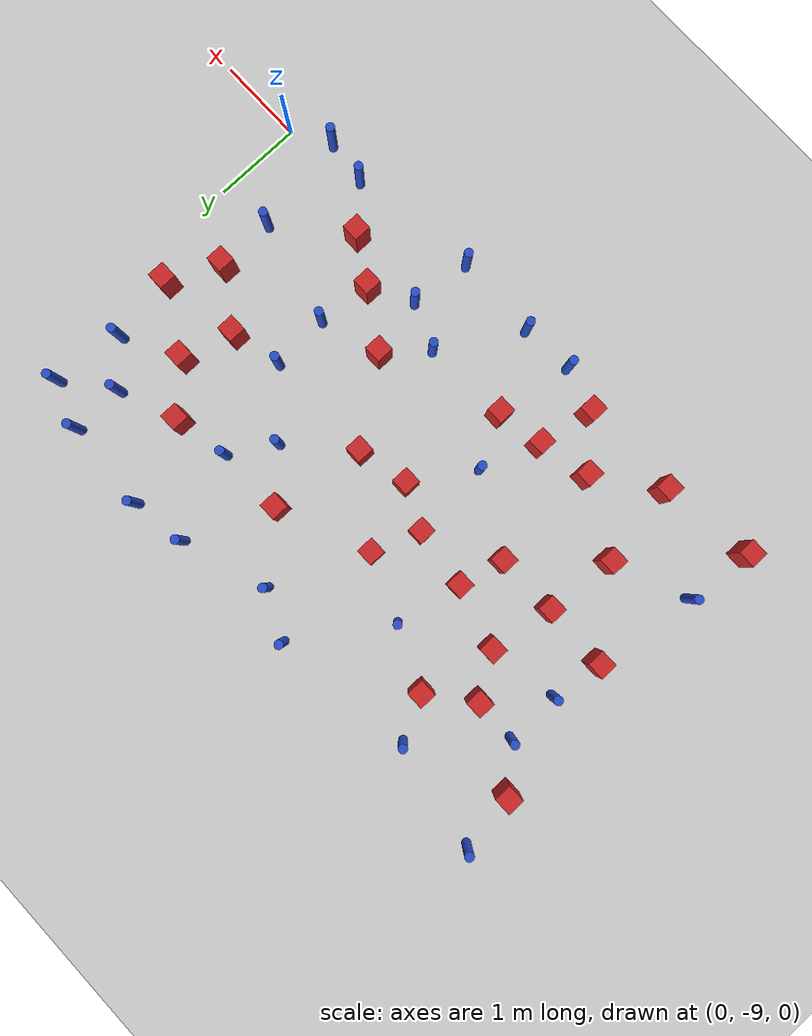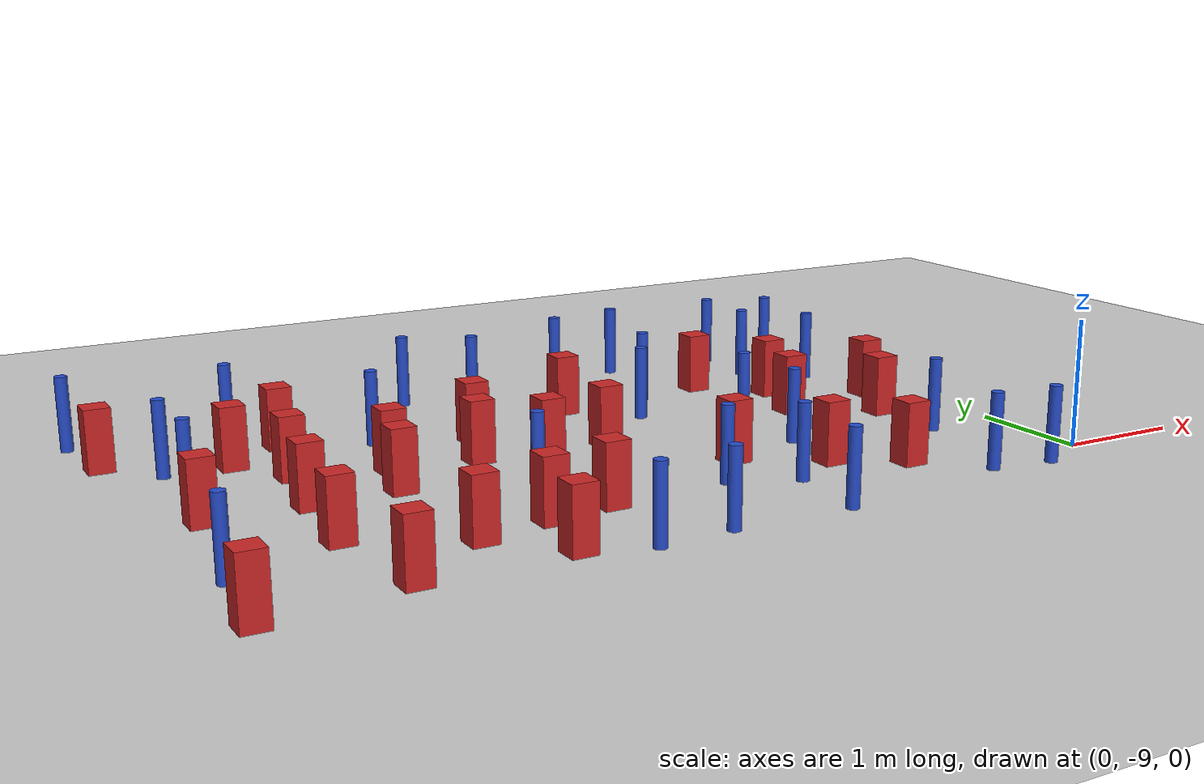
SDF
<sdf version="1.6">
 <world name="default">
  <model name="ground_plane">
   <static>1</static>
   <link name="link">
    <collision name="collision">
     <geometry><plane><normal>0 0 1</normal><size>100 100</size></plane></geometry>
     <surface><friction><ode><mu>100</mu><mu2>50</mu2></ode></friction></surface>
    </collision>
    <visual name="visual">
     <cast_shadows>0</cast_shadows>
     <geometry><plane><normal>0 0 1</normal><size>100 100</size></plane></geometry>
     <material>
      <ambient>1.0 1.0 1.0 1.0</ambient>
      <diffuse>0.8 0.8 0.8 1.0</diffuse>
      <specular>0.01 0.01 0.01 1.000000</specular>
     </material>
    </visual>
   </link>
  </model>
  <model name="pole_obstacle3">
   <static>true</static>
   <pose>-0.965626701555 -9.16200165954 2.88873142074e-08 -9.90536690773e-09 4.60219948967e-07 -1.20965994976e-07</pose>
   <link name="link">
    <pose>0 0 0.3 0 -0 0</pose>
    <inertial>
     <mass>1</mass>
     <inertia><ixx>0.145833</ixx><ixy>0</ixy><ixz>0</ixz><iyy>0.145833</iyy><iyz>0</iyz><izz>0.125</izz></inertia>
    </inertial>
    <collision name="collision">
     <geometry><cylinder><radius>0.05</radius><length>.6</length></cylinder></geometry>
    </collision>
    <visual name="visual">
     <geometry><cylinder><radius>0.05</radius><length>.6</length></cylinder></geometry>
     <material>
      <script><name>Gazebo/Blue</name><uri>file://media/materials/scripts/gazebo.material</uri></script>
     </material>
    </visual>
   </link>
  </model>
  <model name="pole_obstacle4">
   <static>true</static>
   <pose>-0.408652184443 -5.30799203485 2.88873142074e-08 -9.90536689683e-09 4.60219948993e-07 -1.20965994957e-07</pose>
   <link name="link">
    <pose>0 0 0.3 0 -0 0</pose>
    <inertial>
     <mass>1</mass>
     <inertia><ixx>0.145833</ixx><ixy>0</ixy><ixz>0</ixz><iyy>0.145833</iyy><iyz>0</iyz><izz>0.125</izz></inertia>
    </inertial>
    <collision name="collision">
     <geometry><cylinder><radius>0.05</radius><length>.6</length></cylinder></geometry>
    </collision>
    <visual name="visual">
     <geometry><cylinder><radius>0.05</radius><length>.6</length></cylinder></geometry>
     <material>
      <script><name>Gazebo/Blue</name><uri>file://media/materials/scripts/gazebo.material</uri></script>
     </material>
    </visual>
   </link>
  </model>
  <model name="pole_obstacle5">
   <static>true</static>
   <pose>-2.88354378176 -8.45582240815 2.88873142074e-08 -9.90536692318e-09 4.6021994893e-07 -1.20965994988e-07</pose>
   <link name="link">
    <pose>0 0 0.3 0 -0 0</pose>
    <inertial>
     <mass>1</mass>
     <inertia><ixx>0.145833</ixx><ixy>0</ixy><ixz>0</ixz><iyy>0.145833</iyy><iyz>0</iyz><izz>0.125</izz></inertia>
    </inertial>
    <collision name="collision">
     <geometry><cylinder><radius>0.05</radius><length>.6</length></cylinder></geometry>
    </collision>
    <visual name="visual">
     <geometry><cylinder><radius>0.05</radius><length>.6</length></cylinder></geometry>
     <material>
      <script><name>Gazebo/Blue</name><uri>file://media/materials/scripts/gazebo.material</uri></script>
     </material>
    </visual>
   </link>
  </model>
  <model name="pole_obstacle18">
   <static>true</static>
   <pose>-2.51192402279 -6.57364665541 2.88873142074e-08 -9.90536689859e-09 4.60219948989e-07 -1.20965994961e-07</pose>
   <link name="link">
    <pose>0 0 0.3 0 -0 0</pose>
    <inertial>
     <mass>1</mass>
     <inertia><ixx>0.145833</ixx><ixy>0</ixy><ixz>0</ixz><iyy>0.145833</iyy><iyz>0</iyz><izz>0.125</izz></inertia>
    </inertial>
    <collision name="collision">
     <geometry><cylinder><radius>0.05</radius><length>.6</length></cylinder></geometry>
    </collision>
    <visual name="visual">
     <geometry><cylinder><radius>0.05</radius><length>.6</length></cylinder></geometry>
     <material>
      <script><name>Gazebo/Blue</name><uri>file://media/materials/scripts/gazebo.material</uri></script>
     </material>
    </visual>
   </link>
  </model>
  <model name="square_post_obstacle19">
   <static>true</static>
   <pose>-5.41778534808 -5.92555688387 8.22691968438e-08 7.2212513382e-06 -7.54495500217e-07 2.29674213826e-05</pose>
   <link name="link">
    <pose>0 0 0.25 0 -0 0</pose>
    <inertial>
     <mass>100</mass>
     <inertia>
      <ixx>0.166667</ixx>
      <ixy>0</ixy>
      <ixz>0</ixz>
      <iyy>0.166667</iyy>
      <iyz>0</iyz>
      <izz>0.166667</izz>
     </inertia>
    </inertial>
    <collision name="collision"><geometry><box><size>.2 .2 .5</size></box></geometry></collision>
    <visual name="visual">
     <geometry><box><size>.2 .2 .5</size></box></geometry>
     <material>
      <script><name>Gazebo/Red</name><uri>file://media/materials/scripts/gazebo.material</uri></script>
     </material>
    </visual>
   </link>
  </model>
  <model name="square_post_obstacle22">
   <static>true</static>
   <pose>-4.96510467496 -8.71704605584 8.22691968438e-08 7.22125133819e-06 -7.54495500217e-07 2.29674213826e-05</pose>
   <link name="link">
    <pose>0 0 0.25 0 -0 0</pose>
    <inertial>
     <mass>100</mass>
     <inertia>
      <ixx>0.166667</ixx>
      <ixy>0</ixy>
      <ixz>0</ixz>
      <iyy>0.166667</iyy>
      <iyz>0</iyz>
      <izz>0.166667</izz>
     </inertia>
    </inertial>
    <collision name="collision"><geometry><box><size>.2 .2 .5</size></box></geometry></collision>
    <visual name="visual">
     <geometry><box><size>.2 .2 .5</size></box></geometry>
     <material>
      <script><name>Gazebo/Red</name><uri>file://media/materials/scripts/gazebo.material</uri></script>
     </material>
    </visual>
   </link>
  </model>
  <model name="pole_obstacle33">
   <static>true</static>
   <pose>-2.21516781809 -6.08439157944 2.88873142074e-08 -9.90536689859e-09 4.60219948989e-07 -1.20965994961e-07</pose>
   <link name="link">
    <pose>0 0 0.3 0 -0 0</pose>
    <inertial>
     <mass>1</mass>
     <inertia><ixx>0.145833</ixx><ixy>0</ixy><ixz>0</ixz><iyy>0.145833</iyy><iyz>0</iyz><izz>0.125</izz></inertia>
    </inertial>
    <collision name="collision">
     <geometry><cylinder><radius>0.05</radius><length>.6</length></cylinder></geometry>
    </collision>
    <visual name="visual">
     <geometry><cylinder><radius>0.05</radius><length>.6</length></cylinder></geometry>
     <material>
      <script><name>Gazebo/Blue</name><uri>file://media/materials/scripts/gazebo.material</uri></script>
     </material>
    </visual>
   </link>
  </model>
  <model name="pole_obstacle40">
   <static>true</static>
   <pose>-0.937470885243 -5.71173665974 2.88873142074e-08 -9.90536689661e-09 4.60219948993e-07 -1.20965994957e-07</pose>
   <link name="link">
    <pose>0 0 0.3 0 -0 0</pose>
    <inertial>
     <mass>1</mass>
     <inertia><ixx>0.145833</ixx><ixy>0</ixy><ixz>0</ixz><iyy>0.145833</iyy><iyz>0</iyz><izz>0.125</izz></inertia>
    </inertial>
    <collision name="collision">
     <geometry><cylinder><radius>0.05</radius><length>.6</length></cylinder></geometry>
    </collision>
    <visual name="visual">
     <geometry><cylinder><radius>0.05</radius><length>.6</length></cylinder></geometry>
     <material>
      <script><name>Gazebo/Blue</name><uri>file://media/materials/scripts/gazebo.material</uri></script>
     </material>
    </visual>
   </link>
  </model>
  <model name="pole_obstacle41">
   <static>true</static>
   <pose>-6.62295553632 -8.6149199981 2.88873142074e-08 -9.9053668967e-09 4.60219948993e-07 -1.20965994957e-07</pose>
   <link name="link">
    <pose>0 0 0.3 0 -0 0</pose>
    <inertial>
     <mass>1</mass>
     <inertia><ixx>0.145833</ixx><ixy>0</ixy><ixz>0</ixz><iyy>0.145833</iyy><iyz>0</iyz><izz>0.125</izz></inertia>
    </inertial>
    <collision name="collision">
     <geometry><cylinder><radius>0.05</radius><length>.6</length></cylinder></geometry>
    </collision>
    <visual name="visual">
     <geometry><cylinder><radius>0.05</radius><length>.6</length></cylinder></geometry>
     <material>
      <script><name>Gazebo/Blue</name><uri>file://media/materials/scripts/gazebo.material</uri></script>
     </material>
    </visual>
   </link>
  </model>
  <model name="square_post_obstacle34">
   <static>true</static>
   <pose>-5.59237641582 -6.75938222875 8.22691968438e-08 7.2212513382e-06 -7.54495500217e-07 2.29674213826e-05</pose>
   <link name="link">
    <pose>0 0 0.25 0 -0 0</pose>
    <inertial>
     <mass>100</mass>
     <inertia>
      <ixx>0.166667</ixx>
      <ixy>0</ixy>
      <ixz>0</ixz>
      <iyy>0.166667</iyy>
      <iyz>0</iyz>
      <izz>0.166667</izz>
     </inertia>
    </inertial>
    <collision name="collision"><geometry><box><size>.2 .2 .5</size></box></geometry></collision>
    <visual name="visual">
     <geometry><box><size>.2 .2 .5</size></box></geometry>
     <material>
      <script><name>Gazebo/Red</name><uri>file://media/materials/scripts/gazebo.material</uri></script>
     </material>
    </visual>
   </link>
  </model>
  <model name="square_post_obstacle44">
   <static>true</static>
   <pose>-1.14608774891 -6.44288942106 8.22691968438e-08 7.2212513382e-06 -7.54495500217e-07 2.29674213826e-05</pose>
   <link name="link">
    <pose>0 0 0.25 0 -0 0</pose>
    <inertial>
     <mass>100</mass>
     <inertia>
      <ixx>0.166667</ixx>
      <ixy>0</ixy>
      <ixz>0</ixz>
      <iyy>0.166667</iyy>
      <iyz>0</iyz>
      <izz>0.166667</izz>
     </inertia>
    </inertial>
    <collision name="collision"><geometry><box><size>.2 .2 .5</size></box></geometry></collision>
    <visual name="visual">
     <geometry><box><size>.2 .2 .5</size></box></geometry>
     <material>
      <script><name>Gazebo/Red</name><uri>file://media/materials/scripts/gazebo.material</uri></script>
     </material>
    </visual>
   </link>
  </model>
  <model name="pole_obstacle68">
   <static>true</static>
   <pose>-0.451042957827 -9.23060543579 2.88873142074e-08 -9.90536690305e-09 4.60219948978e-07 -1.20965994968e-07</pose>
   <link name="link">
    <pose>0 0 0.3 0 -0 0</pose>
    <inertial>
     <mass>1</mass>
     <inertia><ixx>0.145833</ixx><ixy>0</ixy><ixz>0</ixz><iyy>0.145833</iyy><iyz>0</iyz><izz>0.125</izz></inertia>
    </inertial>
    <collision name="collision">
     <geometry><cylinder><radius>0.05</radius><length>.6</length></cylinder></geometry>
    </collision>
    <visual name="visual">
     <geometry><cylinder><radius>0.05</radius><length>.6</length></cylinder></geometry>
     <material>
      <script><name>Gazebo/Blue</name><uri>file://media/materials/scripts/gazebo.material</uri></script>
     </material>
    </visual>
   </link>
  </model>
  <model name="square_post_obstacle57">
   <static>true</static>
   <pose>-1.32304335306 -7.02066667712 8.22691968438e-08 7.2212513382e-06 -7.54495500217e-07 2.29674213826e-05</pose>
   <link name="link">
    <pose>0 0 0.25 0 -0 0</pose>
    <inertial>
     <mass>100</mass>
     <inertia>
      <ixx>0.166667</ixx>
      <ixy>0</ixy>
      <ixz>0</ixz>
      <iyy>0.166667</iyy>
      <iyz>0</iyz>
      <izz>0.166667</izz>
     </inertia>
    </inertial>
    <collision name="collision"><geometry><box><size>.2 .2 .5</size></box></geometry></collision>
    <visual name="visual">
     <geometry><box><size>.2 .2 .5</size></box></geometry>
     <material>
      <script><name>Gazebo/Red</name><uri>file://media/materials/scripts/gazebo.material</uri></script>
     </material>
    </visual>
   </link>
  </model>
  <model name="square_post_obstacle61">
   <static>true</static>
   <pose>-3.00025700721 -6.10662085031 8.22691968438e-08 7.2212513382e-06 -7.54495500217e-07 2.29674213826e-05</pose>
   <link name="link">
    <pose>0 0 0.25 0 -0 0</pose>
    <inertial>
     <mass>100</mass>
     <inertia>
      <ixx>0.166667</ixx>
      <ixy>0</ixy>
      <ixz>0</ixz>
      <iyy>0.166667</iyy>
      <iyz>0</iyz>
      <izz>0.166667</izz>
     </inertia>
    </inertial>
    <collision name="collision"><geometry><box><size>.2 .2 .5</size></box></geometry></collision>
    <visual name="visual">
     <geometry><box><size>.2 .2 .5</size></box></geometry>
     <material>
      <script><name>Gazebo/Red</name><uri>file://media/materials/scripts/gazebo.material</uri></script>
     </material>
    </visual>
   </link>
  </model>
  <model name="pole_obstacle71">
   <static>true</static>
   <pose>-4.15609176133 -7.94550281358 2.88873142074e-08 -9.90536690842e-09 4.60219948965e-07 -1.20965994976e-07</pose>
   <link name="link">
    <pose>0 0 0.3 0 -0 0</pose>
    <inertial>
     <mass>1</mass>
     <inertia><ixx>0.145833</ixx><ixy>0</ixy><ixz>0</ixz><iyy>0.145833</iyy><iyz>0</iyz><izz>0.125</izz></inertia>
    </inertial>
    <collision name="collision">
     <geometry><cylinder><radius>0.05</radius><length>.6</length></cylinder></geometry>
    </collision>
    <visual name="visual">
     <geometry><cylinder><radius>0.05</radius><length>.6</length></cylinder></geometry>
     <material>
      <script><name>Gazebo/Blue</name><uri>file://media/materials/scripts/gazebo.material</uri></script>
     </material>
    </visual>
   </link>
  </model>
  <model name="square_post_obstacle65">
   <static>true</static>
   <pose>-3.86481248736 -8.49782387297 8.22691968438e-08 7.22125133819e-06 -7.54495500217e-07 2.29674213826e-05</pose>
   <link name="link">
    <pose>0 0 0.25 0 -0 0</pose>
    <inertial>
     <mass>100</mass>
     <inertia>
      <ixx>0.166667</ixx>
      <ixy>0</ixy>
      <ixz>0</ixz>
      <iyy>0.166667</iyy>
      <iyz>0</iyz>
      <izz>0.166667</izz>
     </inertia>
    </inertial>
    <collision name="collision"><geometry><box><size>.2 .2 .5</size></box></geometry></collision>
    <visual name="visual">
     <geometry><box><size>.2 .2 .5</size></box></geometry>
     <material>
      <script><name>Gazebo/Red</name><uri>file://media/materials/scripts/gazebo.material</uri></script>
     </material>
    </visual>
   </link>
  </model>
  <model name="square_post_obstacle67">
   <static>true</static>
   <pose>-3.73595466417 -7.27402258267 8.22691968438e-08 7.2212513382e-06 -7.54495500217e-07 2.29674213826e-05</pose>
   <link name="link">
    <pose>0 0 0.25 0 -0 0</pose>
    <inertial>
     <mass>100</mass>
     <inertia>
      <ixx>0.166667</ixx>
      <ixy>0</ixy>
      <ixz>0</ixz>
      <iyy>0.166667</iyy>
      <iyz>0</iyz>
      <izz>0.166667</izz>
     </inertia>
    </inertial>
    <collision name="collision"><geometry><box><size>.2 .2 .5</size></box></geometry></collision>
    <visual name="visual">
     <geometry><box><size>.2 .2 .5</size></box></geometry>
     <material>
      <script><name>Gazebo/Red</name><uri>file://media/materials/scripts/gazebo.material</uri></script>
     </material>
    </visual>
   </link>
  </model>
  <model name="pole_obstacle81">
   <static>true</static>
   <pose>-6.87006115355 -5.21171896015 2.88873142074e-08 -9.90536690842e-09 4.60219948965e-07 -1.20965994976e-07</pose>
   <link name="link">
    <pose>0 0 0.3 0 -0 0</pose>
    <inertial>
     <mass>1</mass>
     <inertia><ixx>0.145833</ixx><ixy>0</ixy><ixz>0</ixz><iyy>0.145833</iyy><iyz>0</iyz><izz>0.125</izz></inertia>
    </inertial>
    <collision name="collision">
     <geometry><cylinder><radius>0.05</radius><length>.6</length></cylinder></geometry>
    </collision>
    <visual name="visual">
     <geometry><cylinder><radius>0.05</radius><length>.6</length></cylinder></geometry>
     <material>
      <script><name>Gazebo/Blue</name><uri>file://media/materials/scripts/gazebo.material</uri></script>
     </material>
    </visual>
   </link>
  </model>
  <model name="pole_obstacle84">
   <static>true</static>
   <pose>-1.83529402159 -7.80433847484 2.88873142074e-08 -9.90536689852e-09 4.60219948989e-07 -1.2096599496e-07</pose>
   <link name="link">
    <pose>0 0 0.3 0 -0 0</pose>
    <inertial>
     <mass>1</mass>
     <inertia><ixx>0.145833</ixx><ixy>0</ixy><ixz>0</ixz><iyy>0.145833</iyy><iyz>0</iyz><izz>0.125</izz></inertia>
    </inertial>
    <collision name="collision">
     <geometry><cylinder><radius>0.05</radius><length>.6</length></cylinder></geometry>
    </collision>
    <visual name="visual">
     <geometry><cylinder><radius>0.05</radius><length>.6</length></cylinder></geometry>
     <material>
      <script><name>Gazebo/Blue</name><uri>file://media/materials/scripts/gazebo.material</uri></script>
     </material>
    </visual>
   </link>
  </model>
  <model name="square_post_obstacle78">
   <static>true</static>
   <pose>-4.02028770937 -6.52273641959 8.22691968438e-08 7.2212513382e-06 -7.54495500217e-07 2.29674213826e-05</pose>
   <link name="link">
    <pose>0 0 0.25 0 -0 0</pose>
    <inertial>
     <mass>100</mass>
     <inertia>
      <ixx>0.166667</ixx>
      <ixy>0</ixy>
      <ixz>0</ixz>
      <iyy>0.166667</iyy>
      <iyz>0</iyz>
      <izz>0.166667</izz>
     </inertia>
    </inertial>
    <collision name="collision"><geometry><box><size>.2 .2 .5</size></box></geometry></collision>
    <visual name="visual">
     <geometry><box><size>.2 .2 .5</size></box></geometry>
     <material>
      <script><name>Gazebo/Red</name><uri>file://media/materials/scripts/gazebo.material</uri></script>
     </material>
    </visual>
   </link>
  </model>
  <model name="square_post_obstacle80">
   <static>true</static>
   <pose>-6.76681559509 -5.86296117769 8.22691968438e-08 7.22125133819e-06 -7.54495500217e-07 2.29674213826e-05</pose>
   <link name="link">
    <pose>0 0 0.25 0 -0 0</pose>
    <inertial>
     <mass>100</mass>
     <inertia>
      <ixx>0.166667</ixx>
      <ixy>0</ixy>
      <ixz>0</ixz>
      <iyy>0.166667</iyy>
      <iyz>0</iyz>
      <izz>0.166667</izz>
     </inertia>
    </inertial>
    <collision name="collision"><geometry><box><size>.2 .2 .5</size></box></geometry></collision>
    <visual name="visual">
     <geometry><box><size>.2 .2 .5</size></box></geometry>
     <material>
      <script><name>Gazebo/Red</name><uri>file://media/materials/scripts/gazebo.material</uri></script>
     </material>
    </visual>
   </link>
  </model>
  <model name="square_post_obstacle88">
   <static>true</static>
   <pose>-5.63252345962 -9.21817625712 8.22691968438e-08 7.22125133819e-06 -7.54495500217e-07 2.29674213826e-05</pose>
   <link name="link">
    <pose>0 0 0.25 0 -0 0</pose>
    <inertial>
     <mass>100</mass>
     <inertia>
      <ixx>0.166667</ixx>
      <ixy>0</ixy>
      <ixz>0</ixz>
      <iyy>0.166667</iyy>
      <iyz>0</iyz>
      <izz>0.166667</izz>
     </inertia>
    </inertial>
    <collision name="collision"><geometry><box><size>.2 .2 .5</size></box></geometry></collision>
    <visual name="visual">
     <geometry><box><size>.2 .2 .5</size></box></geometry>
     <material>
      <script><name>Gazebo/Red</name><uri>file://media/materials/scripts/gazebo.material</uri></script>
     </material>
    </visual>
   </link>
  </model>
  <model name="square_post_obstacle97">
   <static>true</static>
   <pose>-1.61572175753 -5.97066870792 8.22691968438e-08 7.2212513382e-06 -7.54495500217e-07 2.29674213826e-05</pose>
   <link name="link">
    <pose>0 0 0.25 0 -0 0</pose>
    <inertial>
     <mass>100</mass>
     <inertia>
      <ixx>0.166667</ixx>
      <ixy>0</ixy>
      <ixz>0</ixz>
      <iyy>0.166667</iyy>
      <iyz>0</iyz>
      <izz>0.166667</izz>
     </inertia>
    </inertial>
    <collision name="collision"><geometry><box><size>.2 .2 .5</size></box></geometry></collision>
    <visual name="visual">
     <geometry><box><size>.2 .2 .5</size></box></geometry>
     <material>
      <script><name>Gazebo/Red</name><uri>file://media/materials/scripts/gazebo.material</uri></script>
     </material>
    </visual>
   </link>
  </model>
  <model name="pole_obstacle102">
   <static>true</static>
   <pose>-2.36640591791 -8.67666173458 2.88873142074e-08 -9.90536692318e-09 4.6021994893e-07 -1.20965994988e-07</pose>
   <link name="link">
    <pose>0 0 0.3 0 -0 0</pose>
    <inertial>
     <mass>1</mass>
     <inertia><ixx>0.145833</ixx><ixy>0</ixy><ixz>0</ixz><iyy>0.145833</iyy><iyz>0</iyz><izz>0.125</izz></inertia>
    </inertial>
    <collision name="collision">
     <geometry><cylinder><radius>0.05</radius><length>.6</length></cylinder></geometry>
    </collision>
    <visual name="visual">
     <geometry><cylinder><radius>0.05</radius><length>.6</length></cylinder></geometry>
     <material>
      <script><name>Gazebo/Blue</name><uri>file://media/materials/scripts/gazebo.material</uri></script>
     </material>
    </visual>
   </link>
  </model>
  <model name="square_post_obstacle100">
   <static>true</static>
   <pose>-5.88965173324 -6.29419513606 8.22691968438e-08 7.22125133819e-06 -7.54495500217e-07 2.29674213826e-05</pose>
   <link name="link">
    <pose>0 0 0.25 0 -0 0</pose>
    <inertial>
     <mass>100</mass>
     <inertia>
      <ixx>0.166667</ixx>
      <ixy>0</ixy>
      <ixz>0</ixz>
      <iyy>0.166667</iyy>
      <iyz>0</iyz>
      <izz>0.166667</izz>
     </inertia>
    </inertial>
    <collision name="collision"><geometry><box><size>.2 .2 .5</size></box></geometry></collision>
    <visual name="visual">
     <geometry><box><size>.2 .2 .5</size></box></geometry>
     <material>
      <script><name>Gazebo/Red</name><uri>file://media/materials/scripts/gazebo.material</uri></script>
     </material>
    </visual>
   </link>
  </model>
  <model name="pole_obstacle108">
   <static>true</static>
   <pose>-0.943126899999 -5.12053732588 2.88873142074e-08 -9.90536689661e-09 4.60219948993e-07 -1.20965994957e-07</pose>
   <link name="link">
    <pose>0 0 0.3 0 -0 0</pose>
    <inertial>
     <mass>1</mass>
     <inertia><ixx>0.145833</ixx><ixy>0</ixy><ixz>0</ixz><iyy>0.145833</iyy><iyz>0</iyz><izz>0.125</izz></inertia>
    </inertial>
    <collision name="collision">
     <geometry><cylinder><radius>0.05</radius><length>.6</length></cylinder></geometry>
    </collision>
    <visual name="visual">
     <geometry><cylinder><radius>0.05</radius><length>.6</length></cylinder></geometry>
     <material>
      <script><name>Gazebo/Blue</name><uri>file://media/materials/scripts/gazebo.material</uri></script>
     </material>
    </visual>
   </link>
  </model>
  <model name="pole_obstacle110">
   <static>true</static>
   <pose>-5.6698132056 -5.43679059394 2.88873142074e-08 -9.90536690842e-09 4.60219948965e-07 -1.20965994976e-07</pose>
   <link name="link">
    <pose>0 0 0.3 0 -0 0</pose>
    <inertial>
     <mass>1</mass>
     <inertia><ixx>0.145833</ixx><ixy>0</ixy><ixz>0</ixz><iyy>0.145833</iyy><iyz>0</iyz><izz>0.125</izz></inertia>
    </inertial>
    <collision name="collision">
     <geometry><cylinder><radius>0.05</radius><length>.6</length></cylinder></geometry>
    </collision>
    <visual name="visual">
     <geometry><cylinder><radius>0.05</radius><length>.6</length></cylinder></geometry>
     <material>
      <script><name>Gazebo/Blue</name><uri>file://media/materials/scripts/gazebo.material</uri></script>
     </material>
    </visual>
   </link>
  </model>
  <model name="square_post_obstacle109">
   <static>true</static>
   <pose>-2.52892331687 -8.00804473502 8.22691968438e-08 7.22125133819e-06 -7.54495500217e-07 2.29674213826e-05</pose>
   <link name="link">
    <pose>0 0 0.25 0 -0 0</pose>
    <inertial>
     <mass>100</mass>
     <inertia>
      <ixx>0.166667</ixx>
      <ixy>0</ixy>
      <ixz>0</ixz>
      <iyy>0.166667</iyy>
      <iyz>0</iyz>
      <izz>0.166667</izz>
     </inertia>
    </inertial>
    <collision name="collision"><geometry><box><size>.2 .2 .5</size></box></geometry></collision>
    <visual name="visual">
     <geometry><box><size>.2 .2 .5</size></box></geometry>
     <material>
      <script><name>Gazebo/Red</name><uri>file://media/materials/scripts/gazebo.material</uri></script>
     </material>
    </visual>
   </link>
  </model>
  <model name="pole_obstacle114">
   <static>true</static>
   <pose>-3.40481085732 -9.3426123937 2.88873142074e-08 -9.9053668994e-09 4.60219948987e-07 -1.20965994963e-07</pose>
   <link name="link">
    <pose>0 0 0.3 0 -0 0</pose>
    <inertial>
     <mass>1</mass>
     <inertia><ixx>0.145833</ixx><ixy>0</ixy><ixz>0</ixz><iyy>0.145833</iyy><iyz>0</iyz><izz>0.125</izz></inertia>
    </inertial>
    <collision name="collision">
     <geometry><cylinder><radius>0.05</radius><length>.6</length></cylinder></geometry>
    </collision>
    <visual name="visual">
     <geometry><cylinder><radius>0.05</radius><length>.6</length></cylinder></geometry>
     <material>
      <script><name>Gazebo/Blue</name><uri>file://media/materials/scripts/gazebo.material</uri></script>
     </material>
    </visual>
   </link>
  </model>
  <model name="pole_obstacle115">
   <static>true</static>
   <pose>-4.07789981805 -5.2160023213 2.88873142074e-08 -9.90536690842e-09 4.60219948965e-07 -1.20965994976e-07</pose>
   <link name="link">
    <pose>0 0 0.3 0 -0 0</pose>
    <inertial>
     <mass>1</mass>
     <inertia><ixx>0.145833</ixx><ixy>0</ixy><ixz>0</ixz><iyy>0.145833</iyy><iyz>0</iyz><izz>0.125</izz></inertia>
    </inertial>
    <collision name="collision">
     <geometry><cylinder><radius>0.05</radius><length>.6</length></cylinder></geometry>
    </collision>
    <visual name="visual">
     <geometry><cylinder><radius>0.05</radius><length>.6</length></cylinder></geometry>
     <material>
      <script><name>Gazebo/Blue</name><uri>file://media/materials/scripts/gazebo.material</uri></script>
     </material>
    </visual>
   </link>
  </model>
  <model name="pole_obstacle122">
   <static>true</static>
   <pose>-4.74356454582 -6.22354233545 2.88873142074e-08 -9.90536690842e-09 4.60219948965e-07 -1.20965994976e-07</pose>
   <link name="link">
    <pose>0 0 0.3 0 -0 0</pose>
    <inertial>
     <mass>1</mass>
     <inertia><ixx>0.145833</ixx><ixy>0</ixy><ixz>0</ixz><iyy>0.145833</iyy><iyz>0</iyz><izz>0.125</izz></inertia>
    </inertial>
    <collision name="collision">
     <geometry><cylinder><radius>0.05</radius><length>.6</length></cylinder></geometry>
    </collision>
    <visual name="visual">
     <geometry><cylinder><radius>0.05</radius><length>.6</length></cylinder></geometry>
     <material>
      <script><name>Gazebo/Blue</name><uri>file://media/materials/scripts/gazebo.material</uri></script>
     </material>
    </visual>
   </link>
  </model>
  <model name="pole_obstacle123">
   <static>true</static>
   <pose>-2.58510941309 -5.15001893828 2.88873142074e-08 -9.90536689859e-09 4.60219948989e-07 -1.20965994961e-07</pose>
   <link name="link">
    <pose>0 0 0.3 0 -0 0</pose>
    <inertial>
     <mass>1</mass>
     <inertia><ixx>0.145833</ixx><ixy>0</ixy><ixz>0</ixz><iyy>0.145833</iyy><iyz>0</iyz><izz>0.125</izz></inertia>
    </inertial>
    <collision name="collision">
     <geometry><cylinder><radius>0.05</radius><length>.6</length></cylinder></geometry>
    </collision>
    <visual name="visual">
     <geometry><cylinder><radius>0.05</radius><length>.6</length></cylinder></geometry>
     <material>
      <script><name>Gazebo/Blue</name><uri>file://media/materials/scripts/gazebo.material</uri></script>
     </material>
    </visual>
   </link>
  </model>
  <model name="square_post_obstacle123">
   <static>true</static>
   <pose>-5.01092454346 -7.46160327965 8.22691968438e-08 7.22125133819e-06 -7.54495500217e-07 2.29674213826e-05</pose>
   <link name="link">
    <pose>0 0 0.25 0 -0 0</pose>
    <inertial>
     <mass>100</mass>
     <inertia>
      <ixx>0.166667</ixx>
      <ixy>0</ixy>
      <ixz>0</ixz>
      <iyy>0.166667</iyy>
      <iyz>0</iyz>
      <izz>0.166667</izz>
     </inertia>
    </inertial>
    <collision name="collision"><geometry><box><size>.2 .2 .5</size></box></geometry></collision>
    <visual name="visual">
     <geometry><box><size>.2 .2 .5</size></box></geometry>
     <material>
      <script><name>Gazebo/Red</name><uri>file://media/materials/scripts/gazebo.material</uri></script>
     </material>
    </visual>
   </link>
  </model>
  <model name="square_post_obstacle129">
   <static>true</static>
   <pose>-1.41240426313 -8.71609251033 8.22691968438e-08 7.22125133819e-06 -7.54495500217e-07 2.29674213826e-05</pose>
   <link name="link">
    <pose>0 0 0.25 0 -0 0</pose>
    <inertial>
     <mass>100</mass>
     <inertia>
      <ixx>0.166667</ixx>
      <ixy>0</ixy>
      <ixz>0</ixz>
      <iyy>0.166667</iyy>
      <iyz>0</iyz>
      <izz>0.166667</izz>
     </inertia>
    </inertial>
    <collision name="collision"><geometry><box><size>.2 .2 .5</size></box></geometry></collision>
    <visual name="visual">
     <geometry><box><size>.2 .2 .5</size></box></geometry>
     <material>
      <script><name>Gazebo/Red</name><uri>file://media/materials/scripts/gazebo.material</uri></script>
     </material>
    </visual>
   </link>
  </model>
  <model name="pole_obstacle140">
   <static>true</static>
   <pose>-1.95646056124 -5.0523113677 2.88873142074e-08 -9.90536689721e-09 4.60219948992e-07 -1.20965994958e-07</pose>
   <link name="link">
    <pose>0 0 0.3 0 -0 0</pose>
    <inertial>
     <mass>1</mass>
     <inertia><ixx>0.145833</ixx><ixy>0</ixy><ixz>0</ixz><iyy>0.145833</iyy><iyz>0</iyz><izz>0.125</izz></inertia>
    </inertial>
    <collision name="collision">
     <geometry><cylinder><radius>0.05</radius><length>.6</length></cylinder></geometry>
    </collision>
    <visual name="visual">
     <geometry><cylinder><radius>0.05</radius><length>.6</length></cylinder></geometry>
     <material>
      <script><name>Gazebo/Blue</name><uri>file://media/materials/scripts/gazebo.material</uri></script>
     </material>
    </visual>
   </link>
  </model>
  <model name="square_post_obstacle147">
   <static>true</static>
   <pose>-6.6856312761 -9.36461699108 8.22691968438e-08 7.22125133819e-06 -7.54495500217e-07 2.29674213826e-05</pose>
   <link name="link">
    <pose>0 0 0.25 0 -0 0</pose>
    <inertial>
     <mass>100</mass>
     <inertia>
      <ixx>0.166667</ixx>
      <ixy>0</ixy>
      <ixz>0</ixz>
      <iyy>0.166667</iyy>
      <iyz>0</iyz>
      <izz>0.166667</izz>
     </inertia>
    </inertial>
    <collision name="collision"><geometry><box><size>.2 .2 .5</size></box></geometry></collision>
    <visual name="visual">
     <geometry><box><size>.2 .2 .5</size></box></geometry>
     <material>
      <script><name>Gazebo/Red</name><uri>file://media/materials/scripts/gazebo.material</uri></script>
     </material>
    </visual>
   </link>
  </model>
  <model name="square_post_obstacle150">
   <static>true</static>
   <pose>-4.88892502139 -6.9607769238 8.22691968438e-08 7.22125133819e-06 -7.54495500217e-07 2.29674213826e-05</pose>
   <link name="link">
    <pose>0 0 0.25 0 -0 0</pose>
    <inertial>
     <mass>100</mass>
     <inertia>
      <ixx>0.166667</ixx>
      <ixy>0</ixy>
      <ixz>0</ixz>
      <iyy>0.166667</iyy>
      <iyz>0</iyz>
      <izz>0.166667</izz>
     </inertia>
    </inertial>
    <collision name="collision"><geometry><box><size>.2 .2 .5</size></box></geometry></collision>
    <visual name="visual">
     <geometry><box><size>.2 .2 .5</size></box></geometry>
     <material>
      <script><name>Gazebo/Red</name><uri>file://media/materials/scripts/gazebo.material</uri></script>
     </material>
    </visual>
   </link>
  </model>
  <model name="pole_obstacle156">
   <static>true</static>
   <pose>-0.500551738726 -6.11213688582 2.88873142074e-08 -9.90536689526e-09 4.60219948997e-07 -1.20965994955e-07</pose>
   <link name="link">
    <pose>0 0 0.3 0 -0 0</pose>
    <inertial>
     <mass>1</mass>
     <inertia><ixx>0.145833</ixx><ixy>0</ixy><ixz>0</ixz><iyy>0.145833</iyy><iyz>0</iyz><izz>0.125</izz></inertia>
    </inertial>
    <collision name="collision">
     <geometry><cylinder><radius>0.05</radius><length>.6</length></cylinder></geometry>
    </collision>
    <visual name="visual">
     <geometry><cylinder><radius>0.05</radius><length>.6</length></cylinder></geometry>
     <material>
      <script><name>Gazebo/Blue</name><uri>file://media/materials/scripts/gazebo.material</uri></script>
     </material>
    </visual>
   </link>
  </model>
  <model name="square_post_obstacle153">
   <static>true</static>
   <pose>-0.406260199674 -6.86575234371 8.22691968438e-08 7.22125133819e-06 -7.54495500217e-07 2.29674213826e-05</pose>
   <link name="link">
    <pose>0 0 0.25 0 -0 0</pose>
    <inertial>
     <mass>100</mass>
     <inertia>
      <ixx>0.166667</ixx>
      <ixy>0</ixy>
      <ixz>0</ixz>
      <iyy>0.166667</iyy>
      <iyz>0</iyz>
      <izz>0.166667</izz>
     </inertia>
    </inertial>
    <collision name="collision"><geometry><box><size>.2 .2 .5</size></box></geometry></collision>
    <visual name="visual">
     <geometry><box><size>.2 .2 .5</size></box></geometry>
     <material>
      <script><name>Gazebo/Red</name><uri>file://media/materials/scripts/gazebo.material</uri></script>
     </material>
    </visual>
   </link>
  </model>
  <model name="pole_obstacle160">
   <static>true</static>
   <pose>-4.00389501829 -9.38567045383 2.88873142074e-08 -9.90536689695e-09 4.60219948993e-07 -1.20965994957e-07</pose>
   <link name="link">
    <pose>0 0 0.3 0 -0 0</pose>
    <inertial>
     <mass>1</mass>
     <inertia><ixx>0.145833</ixx><ixy>0</ixy><ixz>0</ixz><iyy>0.145833</iyy><iyz>0</iyz><izz>0.125</izz></inertia>
    </inertial>
    <collision name="collision">
     <geometry><cylinder><radius>0.05</radius><length>.6</length></cylinder></geometry>
    </collision>
    <visual name="visual">
     <geometry><cylinder><radius>0.05</radius><length>.6</length></cylinder></geometry>
     <material>
      <script><name>Gazebo/Blue</name><uri>file://media/materials/scripts/gazebo.material</uri></script>
     </material>
    </visual>
   </link>
  </model>
  <model name="pole_obstacle164">
   <static>true</static>
   <pose>-1.87210229394 -7.1513217449 2.88873142074e-08 -9.90536689852e-09 4.60219948989e-07 -1.2096599496e-07</pose>
   <link name="link">
    <pose>0 0 0.3 0 -0 0</pose>
    <inertial>
     <mass>1</mass>
     <inertia><ixx>0.145833</ixx><ixy>0</ixy><ixz>0</ixz><iyy>0.145833</iyy><iyz>0</iyz><izz>0.125</izz></inertia>
    </inertial>
    <collision name="collision">
     <geometry><cylinder><radius>0.05</radius><length>.6</length></cylinder></geometry>
    </collision>
    <visual name="visual">
     <geometry><cylinder><radius>0.05</radius><length>.6</length></cylinder></geometry>
     <material>
      <script><name>Gazebo/Blue</name><uri>file://media/materials/scripts/gazebo.material</uri></script>
     </material>
    </visual>
   </link>
  </model>
  <model name="square_post_obstacle158">
   <static>true</static>
   <pose>-0.690835184851 -7.43622681012 8.22691968438e-08 7.2212513382e-06 -7.54495500217e-07 2.29674213826e-05</pose>
   <link name="link">
    <pose>0 0 0.25 0 -0 0</pose>
    <inertial>
     <mass>100</mass>
     <inertia>
      <ixx>0.166667</ixx>
      <ixy>0</ixy>
      <ixz>0</ixz>
      <iyy>0.166667</iyy>
      <iyz>0</iyz>
      <izz>0.166667</izz>
     </inertia>
    </inertial>
    <collision name="collision"><geometry><box><size>.2 .2 .5</size></box></geometry></collision>
    <visual name="visual">
     <geometry><box><size>.2 .2 .5</size></box></geometry>
     <material>
      <script><name>Gazebo/Red</name><uri>file://media/materials/scripts/gazebo.material</uri></script>
     </material>
    </visual>
   </link>
  </model>
  <model name="square_post_obstacle161">
   <static>true</static>
   <pose>-5.77499294939 -8.27367194797 8.22691968438e-08 7.22125133819e-06 -7.54495500217e-07 2.29674213826e-05</pose>
   <link name="link">
    <pose>0 0 0.25 0 -0 0</pose>
    <inertial>
     <mass>100</mass>
     <inertia>
      <ixx>0.166667</ixx>
      <ixy>0</ixy>
      <ixz>0</ixz>
      <iyy>0.166667</iyy>
      <iyz>0</iyz>
      <izz>0.166667</izz>
     </inertia>
    </inertial>
    <collision name="collision"><geometry><box><size>.2 .2 .5</size></box></geometry></collision>
    <visual name="visual">
     <geometry><box><size>.2 .2 .5</size></box></geometry>
     <material>
      <script><name>Gazebo/Red</name><uri>file://media/materials/scripts/gazebo.material</uri></script>
     </material>
    </visual>
   </link>
  </model>
  <model name="square_post_obstacle163">
   <static>true</static>
   <pose>-5.70256808956 -7.47647086546 8.22691968438e-08 7.2212513382e-06 -7.54495500217e-07 2.29674213826e-05</pose>
   <link name="link">
    <pose>0 0 0.25 0 -0 0</pose>
    <inertial>
     <mass>100</mass>
     <inertia>
      <ixx>0.166667</ixx>
      <ixy>0</ixy>
      <ixz>0</ixz>
      <iyy>0.166667</iyy>
      <iyz>0</iyz>
      <izz>0.166667</izz>
     </inertia>
    </inertial>
    <collision name="collision"><geometry><box><size>.2 .2 .5</size></box></geometry></collision>
    <visual name="visual">
     <geometry><box><size>.2 .2 .5</size></box></geometry>
     <material>
      <script><name>Gazebo/Red</name><uri>file://media/materials/scripts/gazebo.material</uri></script>
     </material>
    </visual>
   </link>
  </model>
  <model name="square_post_obstacle183">
   <static>true</static>
   <pose>-4.38922313614 -8.58778211054 8.22691968438e-08 7.22125133819e-06 -7.54495500217e-07 2.29674213826e-05</pose>
   <link name="link">
    <pose>0 0 0.25 0 -0 0</pose>
    <inertial>
     <mass>100</mass>
     <inertia>
      <ixx>0.166667</ixx>
      <ixy>0</ixy>
      <ixz>0</ixz>
      <iyy>0.166667</iyy>
      <iyz>0</iyz>
      <izz>0.166667</izz>
     </inertia>
    </inertial>
    <collision name="collision"><geometry><box><size>.2 .2 .5</size></box></geometry></collision>
    <visual name="visual">
     <geometry><box><size>.2 .2 .5</size></box></geometry>
     <material>
      <script><name>Gazebo/Red</name><uri>file://media/materials/scripts/gazebo.material</uri></script>
     </material>
    </visual>
   </link>
  </model>
  <model name="pole_obstacle185">
   <static>true</static>
   <pose>-2.43932171785 -9.36782828915 2.88873142074e-08 -9.90536692318e-09 4.6021994893e-07 -1.20965994988e-07</pose>
   <link name="link">
    <pose>0 0 0.3 0 -0 0</pose>
    <inertial>
     <mass>1</mass>
     <inertia><ixx>0.145833</ixx><ixy>0</ixy><ixz>0</ixz><iyy>0.145833</iyy><iyz>0</iyz><izz>0.125</izz></inertia>
    </inertial>
    <collision name="collision">
     <geometry><cylinder><radius>0.05</radius><length>.6</length></cylinder></geometry>
    </collision>
    <visual name="visual">
     <geometry><cylinder><radius>0.05</radius><length>.6</length></cylinder></geometry>
     <material>
      <script><name>Gazebo/Blue</name><uri>file://media/materials/scripts/gazebo.material</uri></script>
     </material>
    </visual>
   </link>
  </model>
  <model name="pole_obstacle187">
   <static>true</static>
   <pose>-6.38035504496 -6.88845710961 2.88873142074e-08 -9.90536690842e-09 4.60219948965e-07 -1.20965994976e-07</pose>
   <link name="link">
    <pose>0 0 0.3 0 -0 0</pose>
    <inertial>
     <mass>1</mass>
     <inertia><ixx>0.145833</ixx><ixy>0</ixy><ixz>0</ixz><iyy>0.145833</iyy><iyz>0</iyz><izz>0.125</izz></inertia>
    </inertial>
    <collision name="collision">
     <geometry><cylinder><radius>0.05</radius><length>.6</length></cylinder></geometry>
    </collision>
    <visual name="visual">
     <geometry><cylinder><radius>0.05</radius><length>.6</length></cylinder></geometry>
     <material>
      <script><name>Gazebo/Blue</name><uri>file://media/materials/scripts/gazebo.material</uri></script>
     </material>
    </visual>
   </link>
  </model>
  <model name="square_post_obstacle194">
   <static>true</static>
   <pose>-1.91759861239 -8.40437986705 8.22691968438e-08 7.22125133819e-06 -7.54495500217e-07 2.29674213826e-05</pose>
   <link name="link">
    <pose>0 0 0.25 0 -0 0</pose>
    <inertial>
     <mass>100</mass>
     <inertia>
      <ixx>0.166667</ixx>
      <ixy>0</ixy>
      <ixz>0</ixz>
      <iyy>0.166667</iyy>
      <iyz>0</iyz>
      <izz>0.166667</izz>
     </inertia>
    </inertial>
    <collision name="collision"><geometry><box><size>.2 .2 .5</size></box></geometry></collision>
    <visual name="visual">
     <geometry><box><size>.2 .2 .5</size></box></geometry>
     <material>
      <script><name>Gazebo/Red</name><uri>file://media/materials/scripts/gazebo.material</uri></script>
     </material>
    </visual>
   </link>
  </model>
  <model name="pole_obstacle192">
   <static>true</static>
   <pose>-6.3975502236 -6.27627582749 2.88873142074e-08 -9.90536690842e-09 4.60219948965e-07 -1.20965994976e-07</pose>
   <link name="link">
    <pose>0 0 0.3 0 -0 0</pose>
    <inertial>
     <mass>1</mass>
     <inertia><ixx>0.145833</ixx><ixy>0</ixy><ixz>0</ixz><iyy>0.145833</iyy><iyz>0</iyz><izz>0.125</izz></inertia>
    </inertial>
    <collision name="collision">
     <geometry><cylinder><radius>0.05</radius><length>.6</length></cylinder></geometry>
    </collision>
    <visual name="visual">
     <geometry><cylinder><radius>0.05</radius><length>.6</length></cylinder></geometry>
     <material>
      <script><name>Gazebo/Blue</name><uri>file://media/materials/scripts/gazebo.material</uri></script>
     </material>
    </visual>
   </link>
  </model>
  <model name="square_post_obstacle205">
   <static>true</static>
   <pose>-3.16482292599 -7.1478881009 8.22691968438e-08 7.2212513382e-06 -7.54495500217e-07 2.29674213826e-05</pose>
   <link name="link">
    <pose>0 0 0.25 0 -0 0</pose>
    <inertial>
     <mass>100</mass>
     <inertia>
      <ixx>0.166667</ixx>
      <ixy>0</ixy>
      <ixz>0</ixz>
      <iyy>0.166667</iyy>
      <iyz>0</iyz>
      <izz>0.166667</izz>
     </inertia>
    </inertial>
    <collision name="collision"><geometry><box><size>.2 .2 .5</size></box></geometry></collision>
    <visual name="visual">
     <geometry><box><size>.2 .2 .5</size></box></geometry>
     <material>
      <script><name>Gazebo/Red</name><uri>file://media/materials/scripts/gazebo.material</uri></script>
     </material>
    </visual>
   </link>
  </model>
  <model name="pole_obstacle193">
   <static>true</static>
   <pose>-3.54824023251 -5.47315229282 2.88873142074e-08 -9.90536689859e-09 4.60219948989e-07 -1.20965994961e-07</pose>
   <link name="link">
    <pose>0 0 0.3 0 -0 0</pose>
    <inertial>
     <mass>1</mass>
     <inertia><ixx>0.145833</ixx><ixy>0</ixy><ixz>0</ixz><iyy>0.145833</iyy><iyz>0</iyz><izz>0.125</izz></inertia>
    </inertial>
    <collision name="collision">
     <geometry><cylinder><radius>0.05</radius><length>.6</length></cylinder></geometry>
    </collision>
    <visual name="visual">
     <geometry><cylinder><radius>0.05</radius><length>.6</length></cylinder></geometry>
     <material>
      <script><name>Gazebo/Blue</name><uri>file://media/materials/scripts/gazebo.material</uri></script>
     </material>
    </visual>
   </link>
  </model>
  <model name="pole_obstacle197">
   <static>true</static>
   <pose>-0.650772310138 -8.09322877827 2.88873142074e-08 -9.90536690779e-09 4.60219948967e-07 -1.20965994975e-07</pose>
   <link name="link">
    <pose>0 0 0.3 0 -0 0</pose>
    <inertial>
     <mass>1</mass>
     <inertia><ixx>0.145833</ixx><ixy>0</ixy><ixz>0</ixz><iyy>0.145833</iyy><iyz>0</iyz><izz>0.125</izz></inertia>
    </inertial>
    <collision name="collision">
     <geometry><cylinder><radius>0.05</radius><length>.6</length></cylinder></geometry>
    </collision>
    <visual name="visual">
     <geometry><cylinder><radius>0.05</radius><length>.6</length></cylinder></geometry>
     <material>
      <script><name>Gazebo/Blue</name><uri>file://media/materials/scripts/gazebo.material</uri></script>
     </material>
    </visual>
   </link>
  </model>
  <model name="square_post_obstacle212">
   <static>true</static>
   <pose>-4.21575271531 -7.04743240966 8.22691968438e-08 7.22125133819e-06 -7.54495500217e-07 2.29674213826e-05</pose>
   <link name="link">
    <pose>0 0 0.25 0 -0 0</pose>
    <inertial>
     <mass>100</mass>
     <inertia>
      <ixx>0.166667</ixx>
      <ixy>0</ixy>
      <ixz>0</ixz>
      <iyy>0.166667</iyy>
      <iyz>0</iyz>
      <izz>0.166667</izz>
     </inertia>
    </inertial>
    <collision name="collision"><geometry><box><size>.2 .2 .5</size></box></geometry></collision>
    <visual name="visual">
     <geometry><box><size>.2 .2 .5</size></box></geometry>
     <material>
      <script><name>Gazebo/Red</name><uri>file://media/materials/scripts/gazebo.material</uri></script>
     </material>
    </visual>
   </link>
  </model>
  <model name="square_post_obstacle213">
   <static>true</static>
   <pose>-6.44530732107 -7.4592084509 8.22691968438e-08 7.2212513382e-06 -7.54495500217e-07 2.29674213826e-05</pose>
   <link name="link">
    <pose>0 0 0.25 0 -0 0</pose>
    <inertial>
     <mass>100</mass>
     <inertia>
      <ixx>0.166667</ixx>
      <ixy>0</ixy>
      <ixz>0</ixz>
      <iyy>0.166667</iyy>
      <iyz>0</iyz>
      <izz>0.166667</izz>
     </inertia>
    </inertial>
    <collision name="collision"><geometry><box><size>.2 .2 .5</size></box></geometry></collision>
    <visual name="visual">
     <geometry><box><size>.2 .2 .5</size></box></geometry>
     <material>
      <script><name>Gazebo/Red</name><uri>file://media/materials/scripts/gazebo.material</uri></script>
     </material>
    </visual>
   </link>
  </model>
  <model name="square_post_obstacle219">
   <static>true</static>
   <pose>-4.50544944878 -9.21381599436 8.22691968438e-08 7.22125133819e-06 -7.54495500217e-07 2.29674213826e-05</pose>
   <link name="link">
    <pose>0 0 0.25 0 -0 0</pose>
    <inertial>
     <mass>100</mass>
     <inertia>
      <ixx>0.166667</ixx>
      <ixy>0</ixy>
      <ixz>0</ixz>
      <iyy>0.166667</iyy>
      <iyz>0</iyz>
      <izz>0.166667</izz>
     </inertia>
    </inertial>
    <collision name="collision"><geometry><box><size>.2 .2 .5</size></box></geometry></collision>
    <visual name="visual">
     <geometry><box><size>.2 .2 .5</size></box></geometry>
     <material>
      <script><name>Gazebo/Red</name><uri>file://media/materials/scripts/gazebo.material</uri></script>
     </material>
    </visual>
   </link>
  </model>
 </world>
</sdf>
